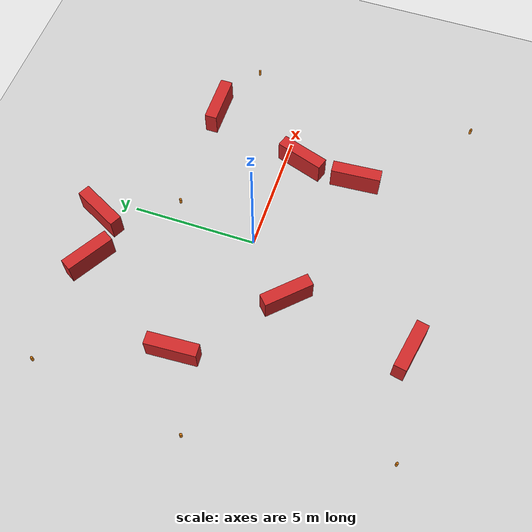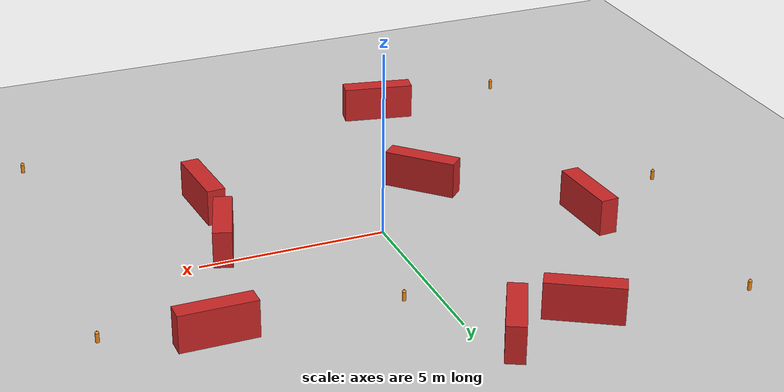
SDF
<sdf version="1.7">
 <world name="default">
  <light name="sun" type="directional">
   <pose>0 0 10 0 -0 0</pose>
   <diffuse>0.8 0.8 0.8 1</diffuse>
   <specular>0.2 0.2 0.2 1</specular>
   <attenuation>
    <range>1000</range>
    <constant>0.9</constant>
    <linear>0.01</linear>
    <quadratic>0.001</quadratic>
   </attenuation>
   <direction>-0.5 0.1 -0.9</direction>
   <spot><inner_angle>0</inner_angle><outer_angle>0</outer_angle><falloff>0</falloff></spot>
  </light>
  <model name="ground_plane">
   <static>1</static>
   <link name="link">
    <collision name="collision">
     <geometry><plane><normal>0 0 1</normal><size>100 100</size></plane></geometry>
     <surface>
      <contact><collide_bitmask>65535</collide_bitmask></contact>
      <friction><ode><mu>100</mu><mu2>50</mu2></ode></friction>
     </surface>
    </collision>
    <visual name="visual">
     <cast_shadows>0</cast_shadows>
     <geometry><plane><normal>0 0 1</normal><size>100 100</size></plane></geometry>
     <material>
      <script><uri>file://media/materials/scripts/gazebo.material</uri><name>Gazebo/Grey</name></script>
     </material>
    </visual>
   </link>
  </model>
  <gravity>0 0 -9.8</gravity>
  <magnetic_field>6e-06 2.3e-05 -4.2e-05</magnetic_field>
  <atmosphere type="adiabatic"/>
  <physics type="ode">
   <max_step_size>0.001</max_step_size>
   <real_time_factor>1</real_time_factor>
   <real_time_update_rate>1000</real_time_update_rate>
  </physics>
  <scene><ambient>0.4 0.4 0.4 1</ambient><background>0.7 0.7 0.7 1</background><shadows>1</shadows></scene>
  <spherical_coordinates>
   <surface_model>EARTH_WGS84</surface_model>
   <latitude_deg>0</latitude_deg>
   <longitude_deg>0</longitude_deg>
   <elevation>0</elevation>
   <heading_deg>0</heading_deg>
  </spherical_coordinates>
  <model name="Obs1">
   <static>1</static>
   <link name="chassis">
    <pose>0 0 0.5 0 -0 0</pose>
    <collision name="collision"><geometry><box><size>2 0.5 1</size></box></geometry></collision>
    <visual name="visual">
     <geometry><box><size>2 0.5 1</size></box></geometry>
     <material>
      <script><uri>file://media/materials/scripts/gazebo.material</uri><name>Gazebo/Red</name></script>
     </material>
    </visual>
    <velocity_decay><linear>0</linear><angular>0</angular></velocity_decay>
   </link>
   <pose>-2 -2 0 0 0 -0.8</pose>
  </model>
  <model name="brick_box_3x1x3">
   <static>1</static>
   <link name="chassis">
    <pose>0 0 0.5 0 -0 0</pose>
    <collision name="collision"><geometry><box><size>2 0.5 1</size></box></geometry></collision>
    <visual name="visual">
     <geometry><box><size>2 0.5 1</size></box></geometry>
     <material>
      <script><uri>file://media/materials/scripts/gazebo.material</uri><name>Gazebo/Red</name></script>
     </material>
    </visual>
    <velocity_decay><linear>0</linear><angular>0</angular></velocity_decay>
   </link>
   <pose>-5.36176 1.27326 0 0 -0 1.62759</pose>
  </model>
  <model name="brick_box_3x1x3_0">
   <static>1</static>
   <link name="chassis">
    <pose>0 0 0.5 0 -0 0</pose>
    <collision name="collision"><geometry><box><size>2 0.5 1</size></box></geometry></collision>
    <visual name="visual">
     <geometry><box><size>2 0.5 1</size></box></geometry>
     <material>
      <script><uri>file://media/materials/scripts/gazebo.material</uri><name>Gazebo/Red</name></script>
     </material>
    </visual>
    <velocity_decay><linear>0</linear><angular>0</angular></velocity_decay>
   </link>
   <pose>-2.68841 -6.93497 0 0 0 -0.195914</pose>
  </model>
  <model name="brick_box_3x1x3_1">
   <static>1</static>
   <link name="chassis">
    <pose>0 0 0.5 0 -0 0</pose>
    <collision name="collision"><geometry><box><size>2 0.5 1</size></box></geometry></collision>
    <visual name="visual">
     <geometry><box><size>2 0.5 1</size></box></geometry>
     <material>
      <script><uri>file://media/materials/scripts/gazebo.material</uri><name>Gazebo/Red</name></script>
     </material>
    </visual>
    <velocity_decay><linear>0</linear><angular>0</angular></velocity_decay>
   </link>
   <pose>-0.811126 6.10451 0 0 -0 1.09564</pose>
  </model>
  <model name="brick_box_3x1x3_2">
   <static>1</static>
   <link name="chassis">
    <pose>0 0 0.5 0 -0 0</pose>
    <collision name="collision"><geometry><box><size>2 0.5 1</size></box></geometry></collision>
    <visual name="visual">
     <geometry><box><size>2 0.5 1</size></box></geometry>
     <material>
      <script><uri>file://media/materials/scripts/gazebo.material</uri><name>Gazebo/Red</name></script>
     </material>
    </visual>
    <velocity_decay><linear>0</linear><angular>0</angular></velocity_decay>
   </link>
   <pose>5.62701 3.46564 0 0 -0 0</pose>
  </model>
  <model name="brick_box_3x1x3_3">
   <static>1</static>
   <link name="chassis">
    <pose>0 0 0.5 0 -0 0</pose>
    <collision name="collision"><geometry><box><size>2 0.5 1</size></box></geometry></collision>
    <visual name="visual">
     <geometry><box><size>2 0.5 1</size></box></geometry>
     <material>
      <script><uri>file://media/materials/scripts/gazebo.material</uri><name>Gazebo/Red</name></script>
     </material>
    </visual>
    <velocity_decay><linear>0</linear><angular>0</angular></velocity_decay>
   </link>
   <pose>3.93626 -3.06088 0 0 -0 1.63915</pose>
  </model>
  <model name="brick_box_3x1x3_4">
   <static>1</static>
   <link name="chassis">
    <pose>0 0 0.5 0 -0 0</pose>
    <collision name="collision"><geometry><box><size>2 0.5 1</size></box></geometry></collision>
    <visual name="visual">
     <geometry><box><size>2 0.5 1</size></box></geometry>
     <material>
      <script><uri>file://media/materials/scripts/gazebo.material</uri><name>Gazebo/Red</name></script>
     </material>
    </visual>
    <velocity_decay><linear>0</linear><angular>0</angular></velocity_decay>
   </link>
   <pose>4.13181 -0.706369 0 0 -0 1.25299</pose>
  </model>
  <model name="brick_box_3x1x3_5">
   <static>1</static>
   <link name="chassis">
    <pose>0 0 0.5 0 -0 0</pose>
    <collision name="collision"><geometry><box><size>2 0.5 1</size></box></geometry></collision>
    <visual name="visual">
     <geometry><box><size>2 0.5 1</size></box></geometry>
     <material>
      <script><uri>file://media/materials/scripts/gazebo.material</uri><name>Gazebo/Red</name></script>
     </material>
    </visual>
    <velocity_decay><linear>0</linear><angular>0</angular></velocity_decay>
   </link>
   <pose>-2.80354 5.74242 0 0 0 -0.536725</pose>
  </model>
  <model name="Nuka-Cola2">
   <static>0</static>
   <link name="link">
    <inertial>
     <pose>0 0 1 0 -0 0</pose>
     <mass>0.39</mass>
     <inertia>
      <ixx>0.00055575</ixx>
      <ixy>0</ixy>
      <ixz>0</ixz>
      <iyy>0.00055575</iyy>
      <iyz>0</iyz>
      <izz>0.0001755</izz>
     </inertia>
    </inertial>
    <collision name="collision">
     <pose>0 0 0.15 0 -0 0.8</pose>
     <geometry><cylinder><radius>0.055</radius><length>0.3</length></cylinder></geometry>
    </collision>
    <visual name="body">
     <pose>0 0 0.12 0 -0 0</pose>
     <geometry><cylinder><radius>0.05</radius><length>0.24</length></cylinder></geometry>
     <material>
      <script><uri>file://media/materials/scripts/gazebo.material</uri><name>Gazebo/Orange</name></script>
     </material>
    </visual>
    <visual name="head">
     <pose>0 0 0.24 0 -0 0</pose>
     <geometry><sphere><radius>0.05</radius></sphere></geometry>
     <material>
      <script><uri>file://media/materials/scripts/gazebo.material</uri><name>Gazebo/Orange</name></script>
     </material>
    </visual>
    <visual name="top">
     <pose>0 0 0.29 0 -0 0</pose>
     <geometry><cylinder><radius>0.01</radius><length>0.04</length></cylinder></geometry>
     <material>
      <script><uri>file://media/materials/scripts/gazebo.material</uri><name>Gazebo/Orange</name></script>
     </material>
    </visual>
   </link>
   <pose>7.99725 -7.04028 -9e-06 1e-06 -6e-06 0.000888</pose>
  </model>
  <model name="Nuka-Cola2_0">
   <static>0</static>
   <link name="link">
    <inertial>
     <pose>0 0 1 0 -0 0</pose>
     <mass>0.39</mass>
     <inertia>
      <ixx>0.00055575</ixx>
      <ixy>0</ixy>
      <ixz>0</ixz>
      <iyy>0.00055575</iyy>
      <iyz>0</iyz>
      <izz>0.0001755</izz>
     </inertia>
    </inertial>
    <collision name="collision">
     <pose>0 0 0.15 0 -0 0.8</pose>
     <geometry><cylinder><radius>0.055</radius><length>0.3</length></cylinder></geometry>
    </collision>
    <visual name="body">
     <pose>0 0 0.12 0 -0 0</pose>
     <geometry><cylinder><radius>0.05</radius><length>0.24</length></cylinder></geometry>
     <material>
      <script><uri>file://media/materials/scripts/gazebo.material</uri><name>Gazebo/Orange</name></script>
     </material>
    </visual>
    <visual name="head">
     <pose>0 0 0.24 0 -0 0</pose>
     <geometry><sphere><radius>0.05</radius></sphere></geometry>
     <material>
      <script><uri>file://media/materials/scripts/gazebo.material</uri><name>Gazebo/Orange</name></script>
     </material>
    </visual>
    <visual name="top">
     <pose>0 0 0.29 0 -0 0</pose>
     <geometry><cylinder><radius>0.01</radius><length>0.04</length></cylinder></geometry>
     <material>
      <script><uri>file://media/materials/scripts/gazebo.material</uri><name>Gazebo/Orange</name></script>
     </material>
    </visual>
   </link>
   <pose>0.86143 3.41448 -0 2e-06 -3e-06 0.001635</pose>
  </model>
  <model name="Nuka-Cola2_1">
   <static>0</static>
   <link name="link">
    <inertial>
     <pose>0 0 1 0 -0 0</pose>
     <mass>0.39</mass>
     <inertia>
      <ixx>0.00055575</ixx>
      <ixy>0</ixy>
      <ixz>0</ixz>
      <iyy>0.00055575</iyy>
      <iyz>0</iyz>
      <izz>0.0001755</izz>
     </inertia>
    </inertial>
    <collision name="collision">
     <pose>0 0 0.15 0 -0 0.8</pose>
     <geometry><cylinder><radius>0.055</radius><length>0.3</length></cylinder></geometry>
    </collision>
    <visual name="body">
     <pose>0 0 0.12 0 -0 0</pose>
     <geometry><cylinder><radius>0.05</radius><length>0.24</length></cylinder></geometry>
     <material>
      <script><uri>file://media/materials/scripts/gazebo.material</uri><name>Gazebo/Orange</name></script>
     </material>
    </visual>
    <visual name="head">
     <pose>0 0 0.24 0 -0 0</pose>
     <geometry><sphere><radius>0.05</radius></sphere></geometry>
     <material>
      <script><uri>file://media/materials/scripts/gazebo.material</uri><name>Gazebo/Orange</name></script>
     </material>
    </visual>
    <visual name="top">
     <pose>0 0 0.29 0 -0 0</pose>
     <geometry><cylinder><radius>0.01</radius><length>0.04</length></cylinder></geometry>
     <material>
      <script><uri>file://media/materials/scripts/gazebo.material</uri><name>Gazebo/Orange</name></script>
     </material>
    </visual>
   </link>
   <pose>-7.21237 6.11017 -0 2e-06 3e-06 0.001312</pose>
  </model>
  <model name="Nuka-Cola2_2">
   <static>0</static>
   <link name="link">
    <inertial>
     <pose>0 0 1 0 -0 0</pose>
     <mass>0.39</mass>
     <inertia>
      <ixx>0.00055575</ixx>
      <ixy>0</ixy>
      <ixz>0</ixz>
      <iyy>0.00055575</iyy>
      <iyz>0</iyz>
      <izz>0.0001755</izz>
     </inertia>
    </inertial>
    <collision name="collision">
     <pose>0 0 0.15 0 -0 0.8</pose>
     <geometry><cylinder><radius>0.055</radius><length>0.3</length></cylinder></geometry>
    </collision>
    <visual name="body">
     <pose>0 0 0.12 0 -0 0</pose>
     <geometry><cylinder><radius>0.05</radius><length>0.24</length></cylinder></geometry>
     <material>
      <script><uri>file://media/materials/scripts/gazebo.material</uri><name>Gazebo/Orange</name></script>
     </material>
    </visual>
    <visual name="head">
     <pose>0 0 0.24 0 -0 0</pose>
     <geometry><sphere><radius>0.05</radius></sphere></geometry>
     <material>
      <script><uri>file://media/materials/scripts/gazebo.material</uri><name>Gazebo/Orange</name></script>
     </material>
    </visual>
    <visual name="top">
     <pose>0 0 0.29 0 -0 0</pose>
     <geometry><cylinder><radius>0.01</radius><length>0.04</length></cylinder></geometry>
     <material>
      <script><uri>file://media/materials/scripts/gazebo.material</uri><name>Gazebo/Orange</name></script>
     </material>
    </visual>
   </link>
   <pose>-6.74676 -7.52004 -0 1e-06 0 -0.000226</pose>
  </model>
  <model name="Nuka-Cola2_3">
   <static>0</static>
   <link name="link">
    <inertial>
     <pose>0 0 1 0 -0 0</pose>
     <mass>0.39</mass>
     <inertia>
      <ixx>0.00055575</ixx>
      <ixy>0</ixy>
      <ixz>0</ixz>
      <iyy>0.00055575</iyy>
      <iyz>0</iyz>
      <izz>0.0001755</izz>
     </inertia>
    </inertial>
    <collision name="collision">
     <pose>0 0 0.15 0 -0 0.8</pose>
     <geometry><cylinder><radius>0.055</radius><length>0.3</length></cylinder></geometry>
    </collision>
    <visual name="body">
     <pose>0 0 0.12 0 -0 0</pose>
     <geometry><cylinder><radius>0.05</radius><length>0.24</length></cylinder></geometry>
     <material>
      <script><uri>file://media/materials/scripts/gazebo.material</uri><name>Gazebo/Orange</name></script>
     </material>
    </visual>
    <visual name="head">
     <pose>0 0 0.24 0 -0 0</pose>
     <geometry><sphere><radius>0.05</radius></sphere></geometry>
     <material>
      <script><uri>file://media/materials/scripts/gazebo.material</uri><name>Gazebo/Orange</name></script>
     </material>
    </visual>
    <visual name="top">
     <pose>0 0 0.29 0 -0 0</pose>
     <geometry><cylinder><radius>0.01</radius><length>0.04</length></cylinder></geometry>
     <material>
      <script><uri>file://media/materials/scripts/gazebo.material</uri><name>Gazebo/Orange</name></script>
     </material>
    </visual>
   </link>
   <pose>-8.15543 -0.1063 -0 1e-06 0 0.000432</pose>
  </model>
  <model name="Nuka-Cola2_4">
   <static>0</static>
   <link name="link">
    <inertial>
     <pose>0 0 1 0 -0 0</pose>
     <mass>0.39</mass>
     <inertia>
      <ixx>0.00055575</ixx>
      <ixy>0</ixy>
      <ixz>0</ixz>
      <iyy>0.00055575</iyy>
      <iyz>0</iyz>
      <izz>0.0001755</izz>
     </inertia>
    </inertial>
    <collision name="collision">
     <pose>0 0 0.15 0 -0 0.8</pose>
     <geometry><cylinder><radius>0.055</radius><length>0.3</length></cylinder></geometry>
    </collision>
    <visual name="body">
     <pose>0 0 0.12 0 -0 0</pose>
     <geometry><cylinder><radius>0.05</radius><length>0.24</length></cylinder></geometry>
     <material>
      <script><uri>file://media/materials/scripts/gazebo.material</uri><name>Gazebo/Orange</name></script>
     </material>
    </visual>
    <visual name="head">
     <pose>0 0 0.24 0 -0 0</pose>
     <geometry><sphere><radius>0.05</radius></sphere></geometry>
     <material>
      <script><uri>file://media/materials/scripts/gazebo.material</uri><name>Gazebo/Orange</name></script>
     </material>
    </visual>
    <visual name="top">
     <pose>0 0 0.29 0 -0 0</pose>
     <geometry><cylinder><radius>0.01</radius><length>0.04</length></cylinder></geometry>
     <material>
      <script><uri>file://media/materials/scripts/gazebo.material</uri><name>Gazebo/Orange</name></script>
     </material>
    </visual>
   </link>
   <pose>8.23737 2.50062 -0 1e-06 -3e-06 0.000298</pose>
  </model>
 </world>
</sdf>
